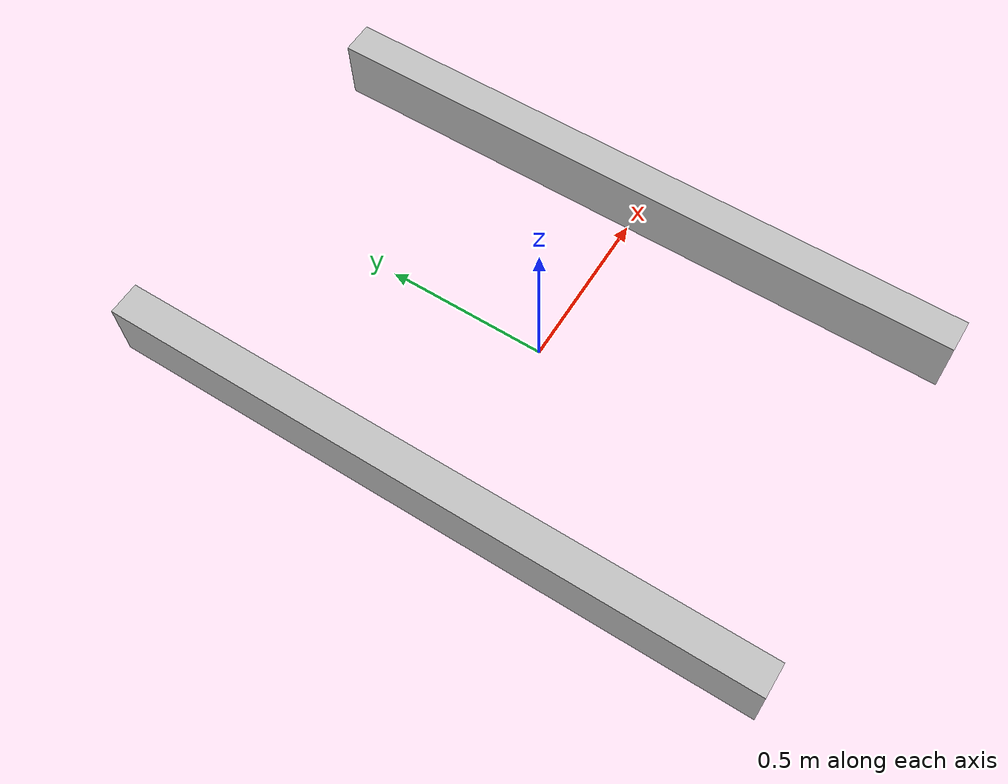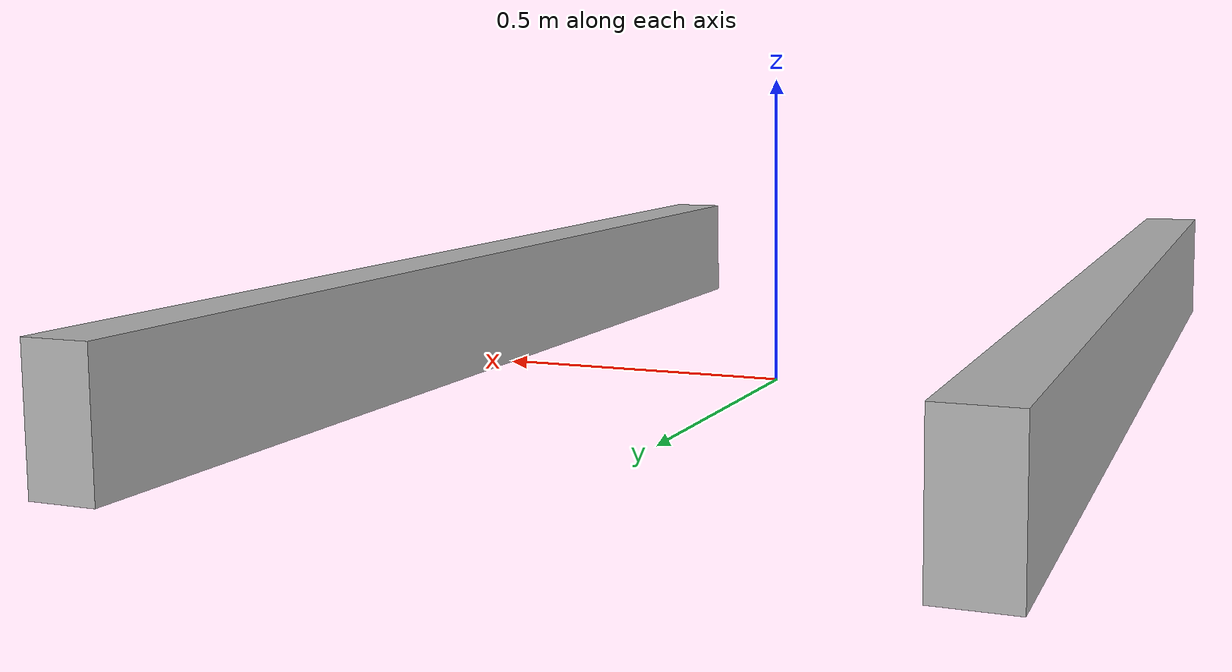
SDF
<?xml version='1.0'?>
<sdf version='1.4'>
  <model name="walls">
    <pose>0 0 0.1 0 0 0</pose>
    <static>true</static>
    <link name="left">
      <pose>-0.55 0 0 0 0 0</pose>
      <collision name="collision_left">
        <geometry>
          <box>
            <size>0.1 2 0.2</size>
          </box>
        </geometry>
      </collision>
      <visual name="visual_left">
        <geometry>
          <box>
            <size>0.1 2 0.2</size>
          </box>
        </geometry>
      </visual>
    </link>
    <link name="right">
      <pose>0.55 0 0 0 0 0</pose>
      <collision name="collision_right">
        <geometry>
          <box>
            <size>0.1 2 0.2</size>
          </box>
        </geometry>
      </collision>
      <visual name="visual_right">
        <geometry>
          <box>
            <size>0.1 2 0.2</size>
          </box>
        </geometry>
      </visual>
    </link>
  </model>
</sdf>
